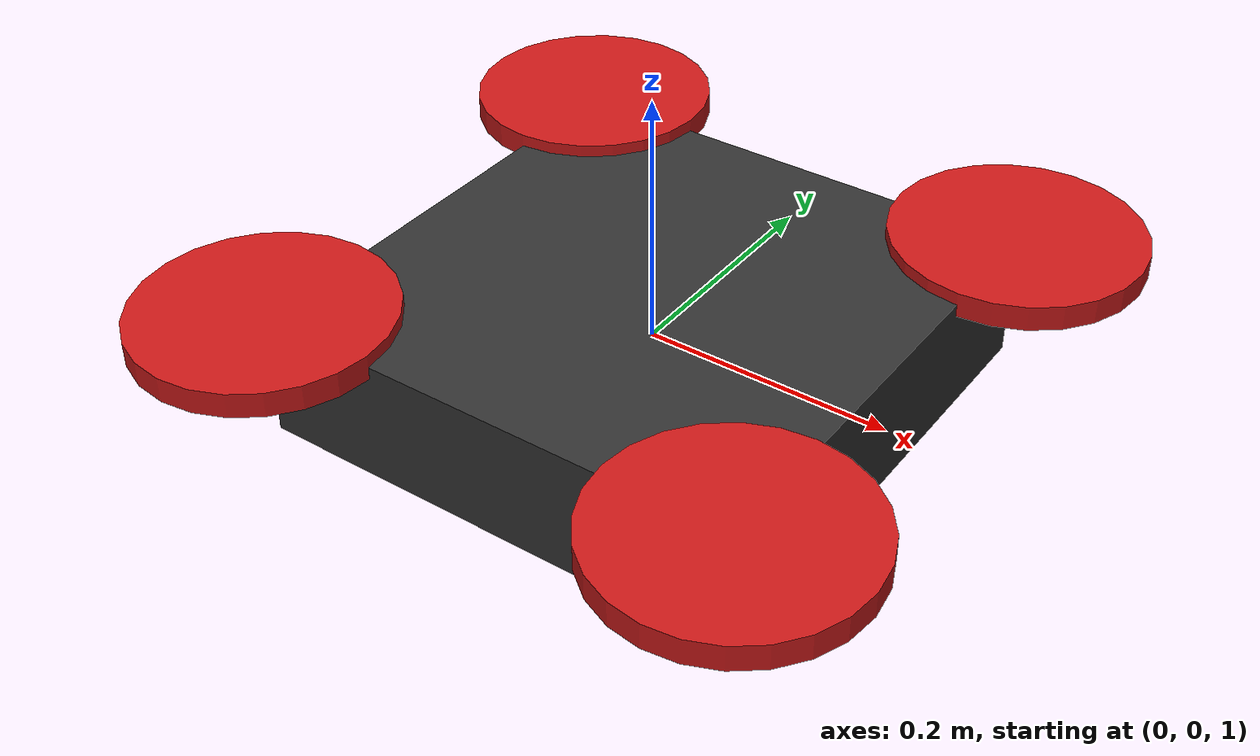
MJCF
<mujoco model="drone">
    <compiler angle="degree" coordinate="local" inertiafromgeom="true"/>
    <option timestep="0.01" gravity="0 0 -9.81"/>

    <asset>
        <material name="body_mat" rgba="0.2 0.2 0.2 1"/>
        <material name="prop_mat" rgba="0.8 0.1 0.1 1"/>
    </asset>

    <worldbody>
        <light pos="0 0 5" dir="0 0 -1" directional="true"/>

        <body name="drone_body" pos="0 0 1">
            <joint type="free"/>
            <geom type="box" size="0.2 0.2 0.05" mass="1.0" material="body_mat"/>

            <!-- Motor 1 -->
            <body name="motor1" pos="0.2 0.2 0.05">
                <geom type="cylinder" size="0.1 0.01" mass="0.05" material="prop_mat" />
            </body>
            <!-- Motor 2 -->
            <body name="motor2" pos="-0.2 -0.2 0.05">
                <geom type="cylinder" size="0.1 0.01" mass="0.05" material="prop_mat" />
            </body>
            <!-- Motor 3 -->
            <body name="motor3" pos="0.2 -0.2 0.05">
                <geom type="cylinder" size="0.1 0.01" mass="0.05" material="prop_mat" />
            </body>
            <!-- Motor 4 -->
            <body name="motor4" pos="-0.2 0.2 0.05">
                <geom type="cylinder" size="0.1 0.01" mass="0.05" material="prop_mat" />
            </body>
        </body>
    </worldbody>
</mujoco>
